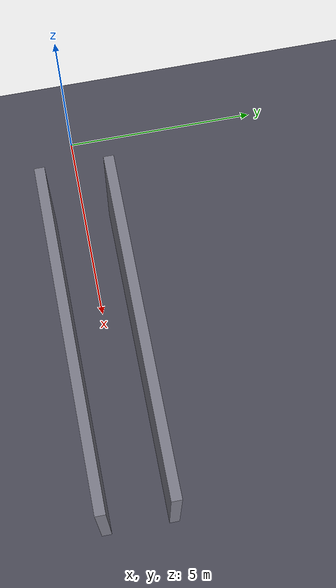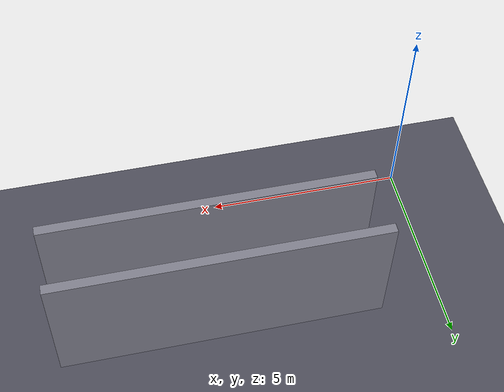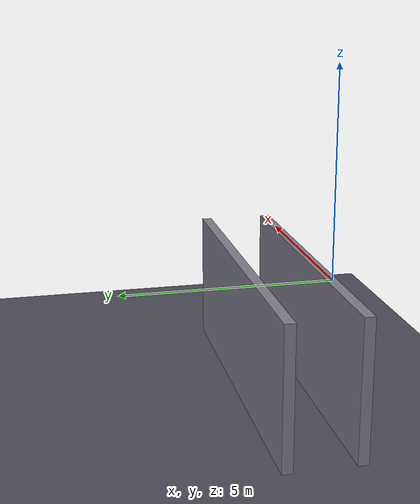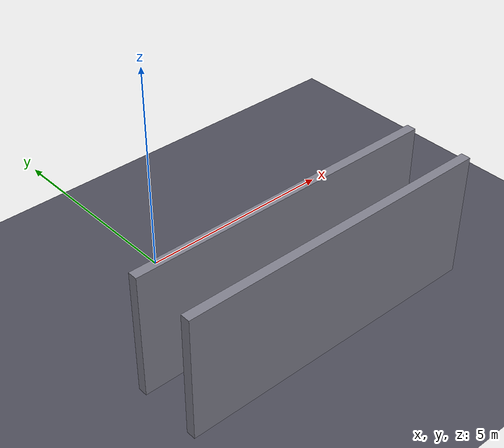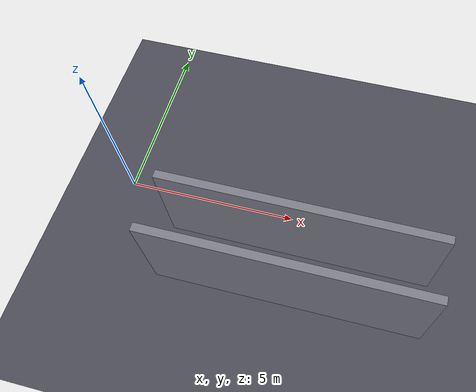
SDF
<?xml version="1.0" ?>
<sdf version="1.9">
  <world name="sic_slam_tank">
    <physics name="4ms" type="ode">
      <max_step_size>0.004</max_step_size>
      <real_time_factor>1.0</real_time_factor>
    </physics>

    <plugin filename="gz-sim-physics-system" name="gz::sim::systems::Physics" />
    <plugin filename="gz-sim-user-commands-system" name="gz::sim::systems::UserCommands" />
    <plugin filename="gz-sim-scene-broadcaster-system" name="gz::sim::systems::SceneBroadcaster" />
    <plugin filename="gz-sim-sensors-system" name="gz::sim::systems::Sensors">
      <render_engine>ogre2</render_engine>
    </plugin>
    <plugin filename="gz-sim-imu-system" name="gz::sim::systems::Imu" />
    <plugin filename="gz-sim-buoyancy-system" name="gz::sim::systems::Buoyancy">
      <uniform_fluid_density>1000</uniform_fluid_density>
      <enable>bluerov2</enable>
    </plugin>

    <light type="directional" name="sun">
      <cast_shadows>true</cast_shadows>
      <pose>0 0 10 0 0 0</pose>
      <diffuse>0.8 0.8 0.8 1</diffuse>
      <specular>0.2 0.2 0.2 1</specular>
      <direction>-0.5 0.1 -0.9</direction>
    </light>

    <model name="tank_floor">
      <static>true</static>
      <pose>0 0 -5 0 0 0</pose>
      <link name="link">
        <collision name="collision">
          <geometry><plane><normal>0 0 1</normal><size>40 40</size></plane></geometry>
        </collision>
        <visual name="visual">
          <geometry><plane><normal>0 0 1</normal><size>40 40</size></plane></geometry>
          <material><ambient>0.3 0.3 0.35 1</ambient><diffuse>0.3 0.3 0.35 1</diffuse></material>
        </visual>
      </link>
    </model>

    <model name="wall_left">
      <static>true</static>
      <pose>5 1 -3 0 0 0</pose>
      <link name="link">
        <collision name="collision"><geometry><box><size>10 0.3 4</size></box></geometry></collision>
        <visual name="visual">
          <geometry><box><size>10 0.3 4</size></box></geometry>
          <material><ambient>0.5 0.5 0.55 1</ambient><diffuse>0.5 0.5 0.55 1</diffuse></material>
        </visual>
      </link>
    </model>

    <model name="wall_right">
      <static>true</static>
      <pose>5 -1 -3 0 0 0</pose>
      <link name="link">
        <collision name="collision"><geometry><box><size>10 0.3 4</size></box></geometry></collision>
        <visual name="visual">
          <geometry><box><size>10 0.3 4</size></box></geometry>
          <material><ambient>0.5 0.5 0.55 1</ambient><diffuse>0.5 0.5 0.55 1</diffuse></material>
        </visual>
      </link>
    </model>
  </world>
</sdf>
